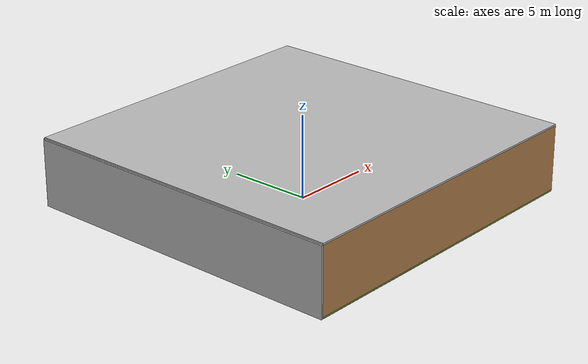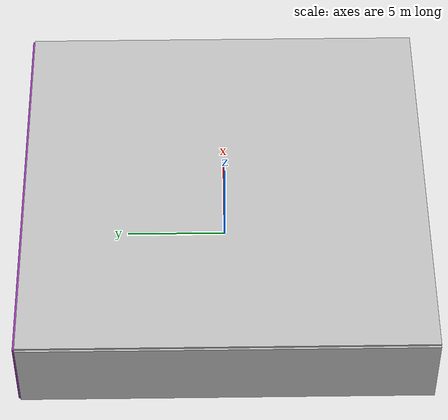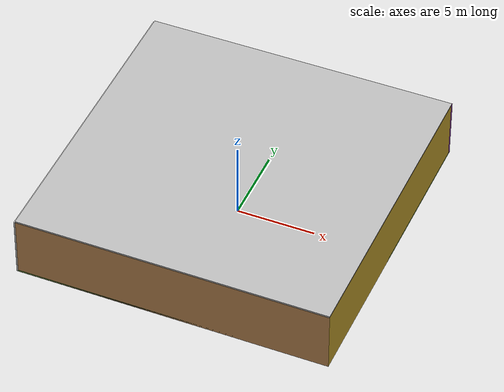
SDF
<sdf version="1.4">
 <world name="default">
  <physics type="ode">
   <max_step_size>0.001</max_step_size>
   <real_time_factor>1</real_time_factor>
   <real_time_update_rate>1000</real_time_update_rate>
   <gravity>0 0 -9.8</gravity>
  </physics>
  <scene><ambient>0.4 0.4 0.4 1</ambient><background>0.7 0.7 0.7 1</background><shadows>1</shadows></scene>
  <model name="Surrounding">
   <static>1</static>
   <link name="Ceiling">
    <collision name="Ceiling_Collision"><geometry><box><size>20 20 0.1</size></box></geometry></collision>
    <visual name="Ceiling_Visual">
     <geometry><box><size>20 20 0.1</size></box></geometry>
     <material>
      <script><uri>file://media/materials/scripts/gazebo.material</uri><name>Gazebo/LightOn</name></script>
     </material>
    </visual>
    <pose>0 0 4.05 0 0 0</pose>
   </link>
   <link name="Wall_South">
    <collision name="Wall_South_Collision">
     <geometry><box><size>20 0 4</size></box></geometry>
     <pose>0 0 2 0 -0 0</pose>
    </collision>
    <visual name="Wall_South_Visual">
     <pose>0 0 2 0 -0 0</pose>
     <geometry><box><size>20 0 4</size></box></geometry>
     <material>
      <script><uri>file://media/materials/scripts/gazebo.material</uri><name>Gazebo/WoodFloor</name></script>
     </material>
    </visual>
    <velocity_decay><linear>0</linear><angular>0</angular></velocity_decay>
    <pose>0 -10 0 0 -0 0</pose>
   </link>
   <link name="Wall_East">
    <collision name="Wall_21_Collision">
     <geometry><box><size>20 0 4</size></box></geometry>
     <pose>0 0 2 0 -0 0</pose>
    </collision>
    <visual name="Wall_21_Visual">
     <pose>0 0 2 0 -0 0</pose>
     <geometry><box><size>20 0 4</size></box></geometry>
     <material>
      <script><uri>file://media/materials/scripts/gazebo.material</uri><name>Gazebo/Gold</name></script>
     </material>
    </visual>
    <velocity_decay><linear>0</linear><angular>0</angular></velocity_decay>
    <pose>10 0 0 0 -0 1.5708</pose>
   </link>
   <link name="Wall_North">
    <collision name="Wall_22_Collision">
     <geometry><box><size>20 0.2 4</size></box></geometry>
     <pose>0 0 2 0 -0 0</pose>
    </collision>
    <visual name="Wall_22_Visual">
     <pose>0 0 2 0 -0 0</pose>
     <geometry><box><size>20 0.2 4</size></box></geometry>
     <material>
      <script><uri>file://media/materials/scripts/gazebo.material</uri><name>Gazebo/Purple</name></script>
     </material>
    </visual>
    <velocity_decay><linear>0</linear><angular>0</angular></velocity_decay>
    <pose>0 10 0 0 -0 0</pose>
   </link>
   <link name="Wall_West">
    <collision name="Wall_23_Collision">
     <geometry><box><size>20 0.2 4</size></box></geometry>
     <pose>0 0 2 0 -0 0</pose>
    </collision>
    <visual name="Wall_23_Visual">
     <pose>0 0 2 0 -0 0</pose>
     <geometry><box><size>20 0.2 4</size></box></geometry>
     <material>
      <script><uri>file://media/materials/scripts/gazebo.material</uri><name>Gazebo/CloudySky</name></script>
     </material>
    </visual>
    <velocity_decay><linear>0</linear><angular>0</angular></velocity_decay>
    <pose>-10 0 0 0 0 -1.5708</pose>
   </link>
   <link name="Ground_link">
    <collision name="collision">
     <pose>0 0 .05 0 -0 0</pose>
     <geometry><box><size>20 20 0.1</size></box></geometry>
    </collision>
    <visual name="visual">
     <pose>0 0 .05 0 -0 0</pose>
     <geometry><box><size>20 20 0.1</size></box></geometry>
     <material>
      <script><uri>file://media/materials/scripts/gazebo.material</uri><name>Gazebo/GreenTransparent</name></script>
     </material>
    </visual>
   </link>
   <static>1</static>
  </model>
  <spherical_coordinates>
   <surface_model>EARTH_WGS84</surface_model>
   <latitude_deg>0</latitude_deg>
   <longitude_deg>0</longitude_deg>
   <elevation>0</elevation>
   <heading_deg>0</heading_deg>
  </spherical_coordinates>
  <light name="lightball_0" type="diffuse">
   <diffuse>0.8 0.8 0.8 1</diffuse>
   <specular>0.2 0.2 0.2 1</specular>
   <attenuation>
    <range>100</range>
    <constant>0.7</constant>
    <linear>0.01</linear>
    <quadratic>0.001</quadratic>
   </attenuation>
   <direction>-0.5 0.1 -0.9</direction>
   <pose>-1.78928941118 1.36475199019 3.72878968148 0 0 0</pose>
  </light>
  <light name="lightball_1" type="diffuse">
   <diffuse>0.8 0.8 0.8 1</diffuse>
   <specular>0.2 0.2 0.2 1</specular>
   <attenuation>
    <range>100</range>
    <constant>0.7</constant>
    <linear>0.01</linear>
    <quadratic>0.001</quadratic>
   </attenuation>
   <direction>-0.5 0.1 -0.9</direction>
   <pose>5.35494590427 -9.62532462601 2.21904650676 0 0 0</pose>
  </light>
  <light name="lightball_2" type="diffuse">
   <diffuse>0.8 0.8 0.8 1</diffuse>
   <specular>0.2 0.2 0.2 1</specular>
   <attenuation>
    <range>100</range>
    <constant>0.7</constant>
    <linear>0.01</linear>
    <quadratic>0.001</quadratic>
   </attenuation>
   <direction>-0.5 0.1 -0.9</direction>
   <pose>7.59260696601 -4.68994683317 2.85497623796 0 0 0</pose>
  </light>
  <light name="lightball_3" type="diffuse">
   <diffuse>0.8 0.8 0.8 1</diffuse>
   <specular>0.2 0.2 0.2 1</specular>
   <attenuation>
    <range>100</range>
    <constant>0.7</constant>
    <linear>0.01</linear>
    <quadratic>0.001</quadratic>
   </attenuation>
   <direction>-0.5 0.1 -0.9</direction>
   <pose>-4.76417699962 -0.938458472088 1.21507505332 0 0 0</pose>
  </light>
  <light name="lightball_4" type="diffuse">
   <diffuse>0.8 0.8 0.8 1</diffuse>
   <specular>0.2 0.2 0.2 1</specular>
   <attenuation>
    <range>100</range>
    <constant>0.7</constant>
    <linear>0.01</linear>
    <quadratic>0.001</quadratic>
   </attenuation>
   <direction>-0.5 0.1 -0.9</direction>
   <pose>-2.95604095818 -9.84004248579 1.52144560814 0 0 0</pose>
  </light>
  <light name="lightball_5" type="diffuse">
   <diffuse>0.8 0.8 0.8 1</diffuse>
   <specular>0.2 0.2 0.2 1</specular>
   <attenuation>
    <range>100</range>
    <constant>0.7</constant>
    <linear>0.01</linear>
    <quadratic>0.001</quadratic>
   </attenuation>
   <direction>-0.5 0.1 -0.9</direction>
   <pose>0.880326992951 -4.68560065438 2.70814578337 0 0 0</pose>
  </light>
  <light name="lightball_6" type="diffuse">
   <diffuse>0.8 0.8 0.8 1</diffuse>
   <specular>0.2 0.2 0.2 1</specular>
   <attenuation>
    <range>100</range>
    <constant>0.7</constant>
    <linear>0.01</linear>
    <quadratic>0.001</quadratic>
   </attenuation>
   <direction>-0.5 0.1 -0.9</direction>
   <pose>-9.37235267865 -1.5858717752 1.27115098348 0 0 0</pose>
  </light>
  <light name="lightball_7" type="diffuse">
   <diffuse>0.8 0.8 0.8 1</diffuse>
   <specular>0.2 0.2 0.2 1</specular>
   <attenuation>
    <range>100</range>
    <constant>0.7</constant>
    <linear>0.01</linear>
    <quadratic>0.001</quadratic>
   </attenuation>
   <direction>-0.5 0.1 -0.9</direction>
   <pose>-5.77745795789 1.66942449962 3.36921739882 0 0 0</pose>
  </light>
  <light name="lightball_8" type="diffuse">
   <diffuse>0.8 0.8 0.8 1</diffuse>
   <specular>0.2 0.2 0.2 1</specular>
   <attenuation>
    <range>100</range>
    <constant>0.7</constant>
    <linear>0.01</linear>
    <quadratic>0.001</quadratic>
   </attenuation>
   <direction>-0.5 0.1 -0.9</direction>
   <pose>7.91506360635 -1.5568353679 3.81909443751 0 0 0</pose>
  </light>
  <light name="lightball_9" type="diffuse">
   <diffuse>0.8 0.8 0.8 1</diffuse>
   <specular>0.2 0.2 0.2 1</specular>
   <attenuation>
    <range>100</range>
    <constant>0.7</constant>
    <linear>0.01</linear>
    <quadratic>0.001</quadratic>
   </attenuation>
   <direction>-0.5 0.1 -0.9</direction>
   <pose>8.90041744575 9.24002579437 2.74660712949 0 0 0</pose>
  </light>
  <light name="lightball_10" type="diffuse">
   <diffuse>0.8 0.8 0.8 1</diffuse>
   <specular>0.2 0.2 0.2 1</specular>
   <attenuation>
    <range>100</range>
    <constant>0.7</constant>
    <linear>0.01</linear>
    <quadratic>0.001</quadratic>
   </attenuation>
   <direction>-0.5 0.1 -0.9</direction>
   <pose>-0.221148490563 2.11881090386 2.08279403232 0 0 0</pose>
  </light>
  <light name="lightball_11" type="diffuse">
   <diffuse>0.8 0.8 0.8 1</diffuse>
   <specular>0.2 0.2 0.2 1</specular>
   <attenuation>
    <range>100</range>
    <constant>0.7</constant>
    <linear>0.01</linear>
    <quadratic>0.001</quadratic>
   </attenuation>
   <direction>-0.5 0.1 -0.9</direction>
   <pose>-5.25001918915 -1.61321251045 2.88812546694 0 0 0</pose>
  </light>
  <light name="lightball_12" type="diffuse">
   <diffuse>0.8 0.8 0.8 1</diffuse>
   <specular>0.2 0.2 0.2 1</specular>
   <attenuation>
    <range>100</range>
    <constant>0.7</constant>
    <linear>0.01</linear>
    <quadratic>0.001</quadratic>
   </attenuation>
   <direction>-0.5 0.1 -0.9</direction>
   <pose>-1.98342236156 7.83038635282 0.985543777792 0 0 0</pose>
  </light>
  <light name="lightball_13" type="diffuse">
   <diffuse>0.8 0.8 0.8 1</diffuse>
   <specular>0.2 0.2 0.2 1</specular>
   <attenuation>
    <range>100</range>
    <constant>0.7</constant>
    <linear>0.01</linear>
    <quadratic>0.001</quadratic>
   </attenuation>
   <direction>-0.5 0.1 -0.9</direction>
   <pose>5.48749710897 -1.43009276252 2.72121354022 0 0 0</pose>
  </light>
  <include><uri>model://table</uri><pose>-0.832721726535 2.27270901753 0 0 0 1.19233011712</pose></include>
  <include>
   <uri>model://robocup_3Dsim_goal</uri>
   <pose>2.21375197235 -8.04096650039 0 0 0 0.417411515997</pose>
  </include>
  <include>
   <uri>model://construction_cone</uri>
   <pose>1.88593897041 -1.07519140164 0 0 0 2.72467960209</pose>
  </include>
  <include><uri>model://cabinet</uri><pose>7.37583539003 -7.26591160807 0 0 0 1.19043427153</pose></include>
 </world>
</sdf>

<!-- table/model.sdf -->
<sdf version="1.5">
  <model name="table">
    <static>true</static>
    <link name="link">
      <collision name="surface">
        <pose>0 0 1.0 0 0 0</pose>
        <geometry>
          <box>
            <size>1.5 0.8 0.03</size>
          </box>
        </geometry>
        <surface>
          <friction>
            <ode>
              <mu>0.6</mu>
              <mu2>0.6</mu2>
            </ode>
          </friction>
        </surface>
      </collision>
      <visual name="visual1">
        <pose>0 0 1.0 0 0 0</pose>
        <geometry>
          <box>
            <size>1.5 0.8 0.03</size>
          </box>
        </geometry>
        <material>
          <script>
            <uri>model://media/materials/scripts/gazebo.material</uri>
            <name>Gazebo/Wood</name>
          </script>
        </material>
      </visual>
      <collision name="front_left_leg">
        <pose>0.68 0.38 0.5 0 0 0</pose>
        <geometry>
          <cylinder>
            <radius>0.02</radius>
            <length>1.0</length>
          </cylinder>
        </geometry>
      </collision>
      <visual name="front_left_leg">
        <pose>0.68 0.38 0.5 0 0 0</pose>
        <geometry>
          <cylinder>
            <radius>0.02</radius>
            <length>1.0</length>
          </cylinder>
        </geometry>
        <material>
          <script>
            <uri>model://media/materials/scripts/gazebo.material</uri>
            <name>Gazebo/Grey</name>
          </script>
        </material>
      </visual>
      <collision name="front_right_leg">
        <pose>0.68 -0.38 0.5 0 0 0</pose>
        <geometry>
          <cylinder>
            <radius>0.02</radius>
            <length>1.0</length>
          </cylinder>
        </geometry>
      </collision>
      <visual name="front_right_leg">
        <pose>0.68 -0.38 0.5 0 0 0</pose>
        <geometry>
          <cylinder>
            <radius>0.02</radius>
            <length>1.0</length>
          </cylinder>
        </geometry>
        <material>
          <script>
            <uri>model://media/materials/scripts/gazebo.material</uri>
            <name>Gazebo/Grey</name>
          </script>
        </material>
      </visual>
      <collision name="back_right_leg">
        <pose>-0.68 -0.38 0.5 0 0 0</pose>
        <geometry>
          <cylinder>
            <radius>0.02</radius>
            <length>1.0</length>
          </cylinder>
        </geometry>
      </collision>
      <visual name="back_right_leg">
        <pose>-0.68 -0.38 0.5 0 0 0</pose>
        <geometry>
          <cylinder>
            <radius>0.02</radius>
            <length>1.0</length>
          </cylinder>
        </geometry>
        <material>
          <script>
            <uri>model://media/materials/scripts/gazebo.material</uri>
            <name>Gazebo/Grey</name>
          </script>
        </material>
      </visual>
      <collision name="back_left_leg">
        <pose>-0.68 0.38 0.5 0 0 0</pose>
        <geometry>
          <cylinder>
            <radius>0.02</radius>
            <length>1.0</length>
          </cylinder>
        </geometry>
      </collision>
      <visual name="back_left_leg">
        <pose>-0.68 0.38 0.5 0 0 0</pose>
        <geometry>
          <cylinder>
            <radius>0.02</radius>
            <length>1.0</length>
          </cylinder>
        </geometry>
        <material>
          <script>
            <uri>model://media/materials/scripts/gazebo.material</uri>
            <name>Gazebo/Grey</name>
          </script>
        </material>
      </visual>
    </link>
  </model>
</sdf>

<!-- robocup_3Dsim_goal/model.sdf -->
<sdf version="1.5">
  <model name="robocup_3d_goal">
    <static>true</static>
    <link name="left_post">
      <pose>0 1.05 0.45 0 0 0</pose>
      <collision name="collision">
        <geometry>
          <cylinder>
            <radius>0.05</radius>
            <length>0.9</length>
          </cylinder>
        </geometry>
      </collision>
      <visual name="visual">
        <geometry>
          <cylinder>
            <radius>0.05</radius>
            <length>0.9</length>
          </cylinder>
        </geometry>
        <material>
          <script>
            <uri>file://media/materials/scripts/gazebo.material</uri>
            <name>Gazebo/ZincYellow</name>
          </script>
        </material>
      </visual>
    </link>
    <link name="left_support_horiz_lower">
      <pose>0.30 1.05 0.01 0 0 0</pose>
      <collision name="collision">
        <geometry>
          <box>
            <size>0.50 0.02 0.02</size>
          </box>
        </geometry>
      </collision>
      <visual name="visual">
        <geometry>
          <box>
            <size>0.50 0.02 0.02</size>
          </box>
        </geometry>
        <material>
          <script>
            <uri>file://media/materials/scripts/gazebo.material</uri>
            <name>Gazebo/White</name>
          </script>
        </material>
      </visual>
    </link>
    <link name="left_support_horiz_upper">
      <pose>0.30 1.05 0.79 0 0 0</pose>
      <collision name="collision">
        <geometry>
          <box>
            <size>0.50 0.02 0.02</size>
          </box>
        </geometry>
      </collision>
      <visual name="visual">
        <geometry>
          <box>
            <size>0.50 0.02 0.02</size>
          </box>
        </geometry>
        <material>
          <script>
            <uri>file://media/materials/scripts/gazebo.material</uri>
            <name>Gazebo/White</name>
          </script>
        </material>
      </visual>
    </link>
    <link name="left_support_vertical">
      <pose>0.56 1.05 0.4 0 1.5708 0</pose>
      <collision name="collision">
        <geometry>
          <box>
            <size>0.80 0.02 0.02</size>
          </box>
        </geometry>
      </collision>
      <visual name="visual">
        <geometry>
          <box>
            <size>0.80 0.02 0.02</size>
          </box>
        </geometry>
        <material>
          <script>
            <uri>file://media/materials/scripts/gazebo.material</uri>
            <name>Gazebo/White</name>
          </script>
        </material>
      </visual>
    </link>
    <link name="right_support_horiz_lower">
      <pose>0.30 -1.05 0.01 0 0 0</pose>
      <collision name="collision">
        <geometry>
          <box>
            <size>0.50 0.02 0.02</size>
          </box>
        </geometry>
      </collision>
      <visual name="visual">
        <geometry>
          <box>
            <size>0.50 0.02 0.02</size>
          </box>
        </geometry>
        <material>
          <script>
            <uri>file://media/materials/scripts/gazebo.material</uri>
            <name>Gazebo/White</name>
          </script>
        </material>
      </visual>
    </link>
    <link name="right_support_horiz_upper">
      <pose>0.30 -1.05 0.79 0 0 0</pose>
      <collision name="collision">
        <geometry>
          <box>
            <size>0.50 0.02 0.02</size>
          </box>
        </geometry>
      </collision>
      <visual name="visual">
        <geometry>
          <box>
            <size>0.50 0.02 0.02</size>
          </box>
        </geometry>
        <material>
          <script>
            <uri>file://media/materials/scripts/gazebo.material</uri>
            <name>Gazebo/White</name>
          </script>
        </material>
      </visual>
    </link>
    <link name="right_support_vertical">
      <pose>0.56 -1.05 0.4 0 1.5708 0</pose>
      <collision name="collision">
        <geometry>
          <box>
            <size>0.80 0.02 0.02</size>
          </box>
        </geometry>
      </collision>
      <visual name="visual">
        <geometry>
          <box>
            <size>0.80 0.02 0.02</size>
          </box>
        </geometry>
        <material>
          <script>
            <uri>file://media/materials/scripts/gazebo.material</uri>
            <name>Gazebo/White</name>
          </script>
        </material>
      </visual>
    </link>
    <link name="center_support_horiz_lower">
      <pose>0.56 0 0.01 0 1.5708 0</pose>
      <collision name="collision">
        <geometry>
          <box>
            <size>0.02 2.08 0.02</size>
          </box>
        </geometry>
      </collision>
      <visual name="visual">
        <geometry>
          <box>
            <size>0.02 2.08 0.02</size>
          </box>
        </geometry>
        <material>
          <script>
            <uri>file://media/materials/scripts/gazebo.material</uri>
            <name>Gazebo/White</name>
          </script>
        </material>
      </visual>
    </link>
    <link name="center_support_horiz_upper">
      <pose>0.56 0 0.79 0 1.5708 0</pose>
      <collision name="collision">
        <geometry>
          <box>
            <size>0.02 2.08 0.02</size>
          </box>
        </geometry>
      </collision>
      <visual name="visual">
        <geometry>
          <box>
            <size>0.02 2.08 0.02</size>
          </box>
        </geometry>
        <material>
          <script>
            <uri>file://media/materials/scripts/gazebo.material</uri>
            <name>Gazebo/White</name>
          </script>
        </material>
      </visual>
    </link>
    <link name="right_post">
      <pose>0 -1.05 0.45 0 0 0</pose>
      <collision name="collision">
        <geometry>
          <cylinder>
            <radius>0.05</radius>
            <length>0.9</length>
          </cylinder>
        </geometry>
      </collision>
      <visual name="visual">
        <geometry>
          <cylinder>
            <radius>0.05</radius>
            <length>0.9</length>
          </cylinder>
        </geometry>
        <material>
          <script>
            <uri>file://media/materials/scripts/gazebo.material</uri>
            <name>Gazebo/ZincYellow</name>
          </script>
        </material>
      </visual>
    </link>
    <link name="crossbar">
      <pose>0 0 0.85 1.57 1.57 0</pose>
      <collision name="collision">
        <geometry>
          <cylinder>
            <radius>0.05</radius>
            <length>2.0</length>
          </cylinder>
        </geometry>
      </collision>
      <visual name="visual">
        <geometry>
          <cylinder>
            <radius>0.05</radius>
            <length>2.0</length>
          </cylinder>
        </geometry>
        <material>
          <script>
            <uri>file://media/materials/scripts/gazebo.material</uri>
            <name>Gazebo/ZincYellow</name>
          </script>
        </material>
      </visual>
    </link>
    <link name="center_net">
      <pose>0.56 0 0.40 0 0 0</pose>
      <collision name="collision">
        <geometry>
          <box>
            <size>0.01 2.1 0.80</size>
          </box>
        </geometry>
      </collision>
      <visual name="visual">
        <geometry>
          <box>
            <size>0.01 2.1 0.80</size>
          </box>
        </geometry>
        <material>
          <script>
            <uri>model://../model_source/models/robocup09_spl_field/materials/scripts/</uri>
            <uri>model://../model_source/models/robocup09_spl_field/materials/textures/</uri>
            <name>RoboCup/Net</name>
          </script>
        </material>
      </visual>
    </link>
    <link name="left_net">
      <pose>0.30 1.05 0.40 0 0 0</pose>
      <collision name="collision">
        <geometry>
          <box>
            <size>0.50 0.01 0.76</size>
          </box>
        </geometry>
      </collision>
      <visual name="visual">
        <geometry>
          <box>
            <size>0.50 0.01 0.76</size>
          </box>
        </geometry>
        <material>
          <script>
            <uri>model://../model_source/models/robocup09_spl_field/materials/scripts/</uri>
            <uri>model://../model_source/models/robocup09_spl_field/materials/textures/</uri>
            <name>RoboCup/Net</name>
          </script>
        </material>
      </visual>
    </link>
    <link name="right_net">
      <pose>0.30 -1.05 0.40 0 0 0</pose>
      <collision name="collision">
        <geometry>
          <box>
            <size>0.50 0.01 0.76</size>
          </box>
        </geometry>
      </collision>
      <visual name="visual">
        <geometry>
          <box>
            <size>0.50 0.01 0.76</size>
          </box>
        </geometry>
        <material>
          <script>
            <uri>model://../model_source/models/robocup09_spl_field/materials/scripts/</uri>
            <uri>model://../model_source/models/robocup09_spl_field/materials/textures/</uri>
            <name>RoboCup/Net</name>
          </script>
        </material>
      </visual>
    </link>
  </model>
</sdf>

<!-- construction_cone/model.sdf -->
<sdf version="1.5">
  <model name="Construction Cone">
    <link name="link">
      <collision name="collision">
        <geometry>
          <mesh>
            <scale>10 10 10</scale>
            <uri>file://isr-testbed/construction_cone/meshes/construction_cone.dae</uri>
          </mesh>
        </geometry>
      </collision>
      <visual name="visual">
        <geometry>
          <mesh>
            <scale>10 10 10</scale>
            <uri>file://isr-testbed/construction_cone/meshes/construction_cone.dae</uri>
          </mesh>
        </geometry>
      </visual>
    </link>
  </model>
</sdf>

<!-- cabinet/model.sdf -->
<sdf version="1.5">
  <model name="cabinet">
    <static>true</static>
    <link name="cabinet_bottom_plate">
      <inertial>
        <pose>0 0 -1 0 0 0</pose>
        <inertia>
          <ixx>2.050000</ixx>
          <ixy>0</ixy>
          <ixz>0</ixz>
          <iyy>2.050000</iyy>
          <iyz>0</iyz>
          <izz>2.050000</izz>
        </inertia>
        <mass>25.000000</mass>
      </inertial>
      <collision name="cabinet_bottom_plate_geom">
        <pose>0 0 0.010000 0 0 0</pose>
        <geometry>
          <box>
            <size>0.450000 0.450000 0.020000</size>
          </box>
        </geometry>
      </collision>
      <visual name="cabinet_bottom_plate_geom_visual">
        <pose>0 0 0.010000 0 0 0</pose>
        <geometry>
          <box>
            <size>0.450000 0.450000 0.020000</size>
          </box>
        </geometry>
        <material>
          <script>
            <uri>model://media/materials/scripts/gazebo.material</uri>
            <name>Gazebo/Wood</name>
          </script>
        </material>
      </visual>
      <collision name="cabinet_bottom_plate_geom_cabinet_back_plate">
        <pose>0.235000 0 0.510000 0 0 0</pose>
        <geometry>
          <box>
            <size>0.020000 0.450000 1.020000</size>
          </box>
        </geometry>
      </collision>
      <visual name="cabinet_bottom_plate_geom_cabinet_back_plate_visual">
        <pose>0.235000 0 0.510000 0 0 0</pose>
        <geometry>
          <box>
            <size>0.020000 0.450000 1.020000</size>
          </box>
        </geometry>
        <material>
          <script>
            <uri>model://media/materials/scripts/gazebo.material</uri>
            <name>Gazebo/Wood</name>
          </script>
        </material>
      </visual>
      <collision name="cabinet_bottom_plate_geom_cabinet_left_plate">
        <pose>0 0.235000 0.510000 0 0 0</pose>
        <geometry>
          <box>
            <size>0.450000 0.020000 1.020000</size>
          </box>
        </geometry>
      </collision>
      <visual name="cabinet_bottom_plate_geom_cabinet_left_plate_visual">
        <pose>0 0.235000 0.510000 0 0 0</pose>
        <geometry>
          <box>
            <size>0.450000 0.020000 1.020000</size>
          </box>
        </geometry>
        <material>
          <script>
            <uri>model://media/materials/scripts/gazebo.material</uri>
            <name>Gazebo/Wood</name>
          </script>
        </material>
      </visual>
      <collision name="cabinet_bottom_plate_geom_cabinet_middle_plate">
        <pose>0 0 0.510000 0 0 0</pose>
        <geometry>
          <box>
            <size>0.450000 0.450000 0.020000</size>
          </box>
        </geometry>
      </collision>
      <visual name="cabinet_bottom_plate_geom_cabinet_middle_plate_visual">
        <pose>0 0 0.510000 0 0 0</pose>
        <geometry>
          <box>
            <size>0.450000 0.450000 0.020000</size>
          </box>
        </geometry>
        <material>
          <script>
            <uri>model://media/materials/scripts/gazebo.material</uri>
            <name>Gazebo/Wood</name>
          </script>
        </material>
      </visual>
      <collision name="cabinet_bottom_plate_geom_cabinet_right_plate">
        <pose>0 -0.235000 0.510000 0 0 0</pose>
        <geometry>
          <box>
            <size>0.450000 0.020000 1.020000</size>
          </box>
        </geometry>
      </collision>
      <visual name="cabinet_bottom_plate_geom_cabinet_right_plate_visual">
        <pose>0 -0.235000 0.510000 0 0 0</pose>
        <geometry>
          <box>
            <size>0.450000 0.020000 1.020000</size>
          </box>
        </geometry>
        <material>
          <script>
            <uri>model://media/materials/scripts/gazebo.material</uri>
            <name>Gazebo/Wood</name>
          </script>
        </material>
      </visual>
      <collision name="cabinet_bottom_plate_geom_cabinet_top_plate">
        <pose>0 0 1.010000 0 0 0</pose>
        <geometry>
          <box>
            <size>0.450000 0.450000 0.020000</size>
          </box>
        </geometry>
      </collision>
      <visual name="cabinet_bottom_plate_geom_cabinet_top_plate_visual">
        <pose>0 0 1.010000 0 0 0</pose>
        <geometry>
          <box>
            <size>0.450000 0.450000 0.020000</size>
          </box>
        </geometry>
        <material>
          <script>
            <uri>model://media/materials/scripts/gazebo.material</uri>
            <name>Gazebo/Wood</name>
          </script>
        </material>
      </visual>
    </link>
  </model>
</sdf>
